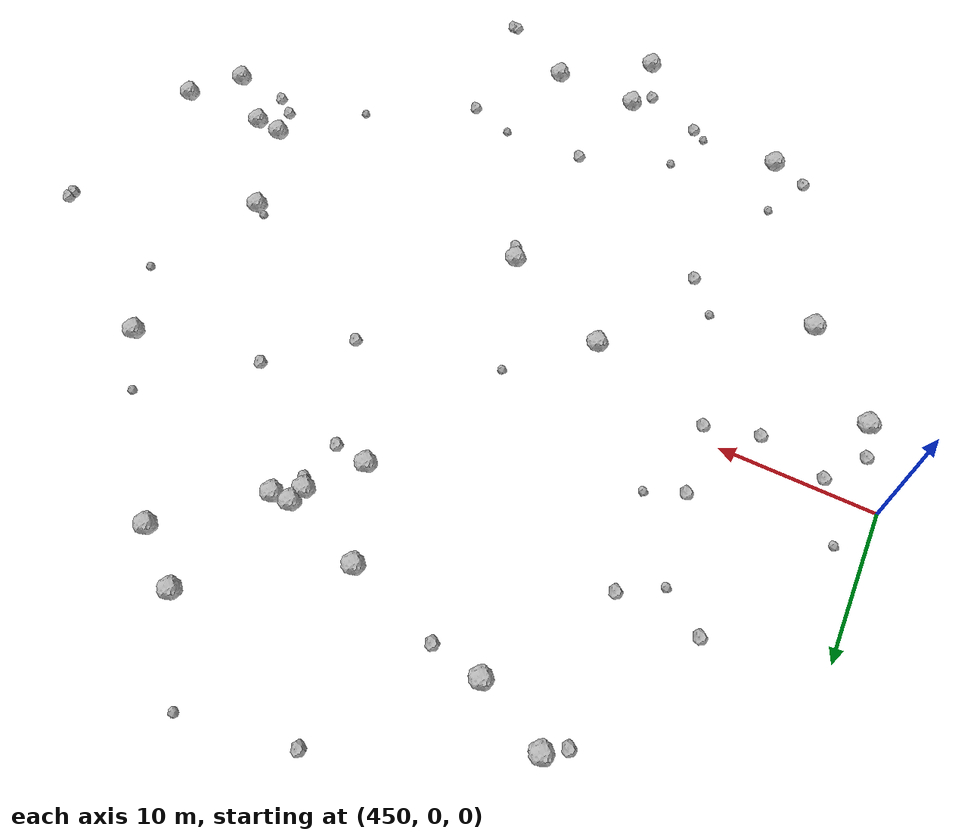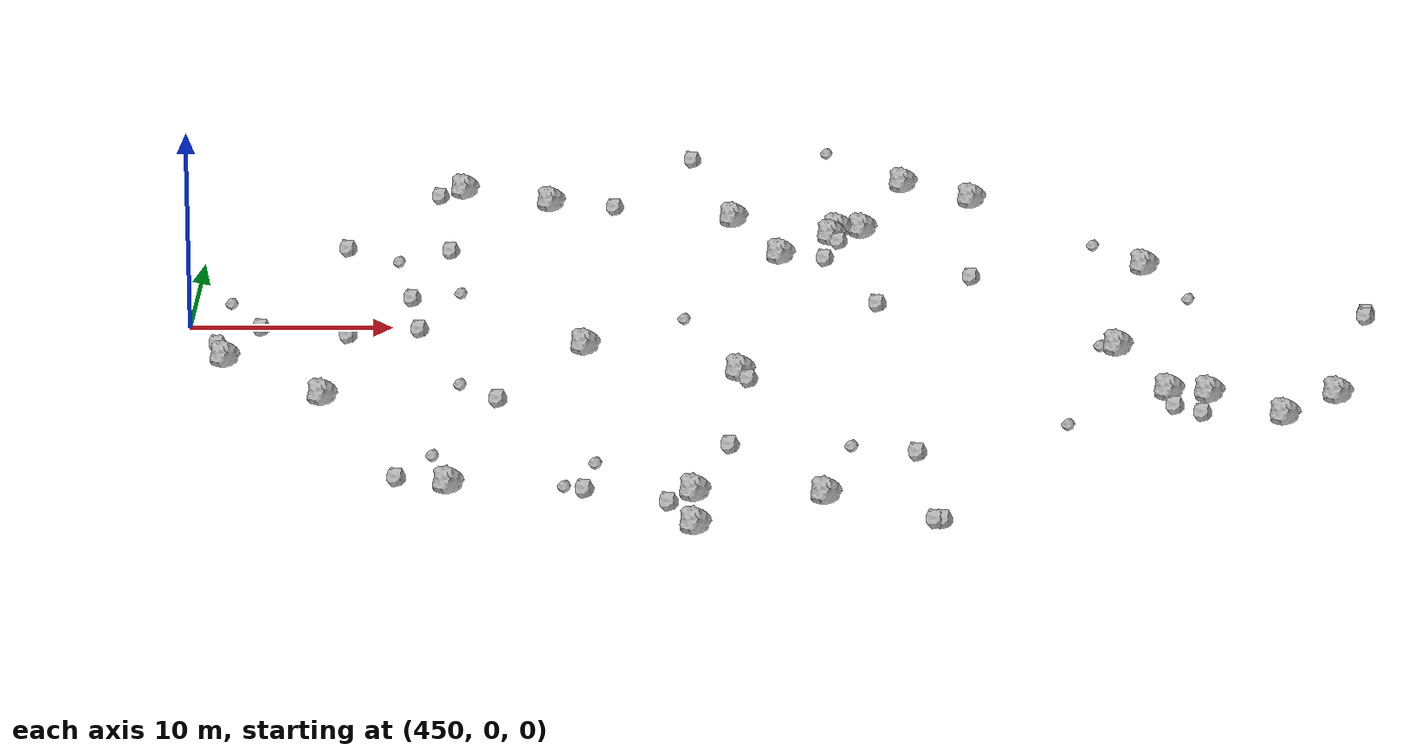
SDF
<sdf version="1.6">
 <world name="default">
  <include><uri>model://sun</uri></include>
  <model name="rock1_12_4">
   <include><uri>model://rock1</uri><pose>503.249585355101 -13.832594096502941 0.5 0 0 0</pose></include>
  </model>
  <model name="rock1_12_5">
   <include><uri>model://rock1</uri><pose>475.28103238405333 -24.634674429421295 0.5 0 0 0</pose></include>
  </model>
  <model name="rock1_12_6">
   <include><uri>model://rock1</uri><pose>463.79789161563974 -23.624499072257656 0.5 0 0 0</pose></include>
  </model>
  <model name="rock1_12_7">
   <include><uri>model://rock1</uri><pose>481.3566338211119 -24.998391225796908 0.5 0 0 0</pose></include>
  </model>
  <model name="rock1_12_8">
   <include><uri>model://rock1</uri><pose>488.96686410115 20.02758414301632 0.5 0 0 0</pose></include>
  </model>
  <model name="rock1_12_9">
   <include><uri>model://rock1</uri><pose>485.4559568385829 22.706919088020896 0.5 0 0 0</pose></include>
  </model>
  <model name="rock1_12_10">
   <include><uri>model://rock1</uri><pose>505.9642279458599 -10.712436232650347 0.5 0 0 0</pose></include>
  </model>
  <model name="rock1_12_11">
   <include><uri>model://rock1</uri><pose>452.11333938442107 -5.532749724424594 0.5 0 0 0</pose></include>
  </model>
  <model name="rock1_12_12">
   <include><uri>model://rock1</uri><pose>467.2086931568928 19.384708147430203 0.5 0 0 0</pose></include>
  </model>
  <model name="rock1_12_13">
   <include><uri>model://rock1</uri><pose>469.61356009889937 -3.6032912678239484 0.5 0 0 0</pose></include>
  </model>
  <model name="rock1_12_14">
   <include><uri>model://rock1</uri><pose>476.68162524523495 16.754481489681247 0.5 0 0 0</pose></include>
  </model>
  <model name="rock1_12_15">
   <include><uri>model://rock1</uri><pose>482.0303808567345 14.942521714614301 0.5 0 0 0</pose></include>
  </model>
  <model name="rock1_12_16">
   <include><uri>model://rock1</uri><pose>481.6980658587063 13.861975122615775 0.5 0 0 0</pose></include>
  </model>
  <model name="rock1_12_17">
   <include><uri>model://rock1</uri><pose>497.4730052525495 8.979441101435299 0.5 0 0 0</pose></include>
  </model>
  <model name="rock1_12_18">
   <include><uri>model://rock1</uri><pose>499.8015108936437 -10.594500004399848 0.5 0 0 0</pose></include>
  </model>
  <model name="rock1_12_19">
   <include><uri>model://rock1</uri><pose>475.3651957257949 -29.0694879876257 0.5 0 0 0</pose></include>
  </model>
  <model name="rock1_12_20">
   <include><uri>model://rock1</uri><pose>497.8780373033901 -10.298335827099233 0.5 0 0 0</pose></include>
  </model>
  <model name="rock1_12_21">
   <include><uri>model://rock1</uri><pose>479.11722560455866 10.721933377592961 0.5 0 0 0</pose></include>
  </model>
  <model name="rock1_12_22">
   <include><uri>model://rock1</uri><pose>495.6700939489625 -3.677650370907717 0.5 0 0 0</pose></include>
  </model>
  <model name="rock1_12_23">
   <include><uri>model://rock1</uri><pose>483.28899031343065 14.942634433956925 0.5 0 0 0</pose></include>
  </model>
  <model name="rock1_12_24">
   <include><uri>model://rock1</uri><pose>457.1944423412037 -11.14756573718643 0.5 0 0 0</pose></include>
  </model>
  <model name="rock1_12_25">
   <include><uri>model://rock1</uri><pose>477.231798645814 -7.475717035211677 0.5 0 0 0</pose></include>
  </model>
  <model name="rock1_12_26">
   <include><uri>model://rock1</uri><pose>462.659879210007 21.52545999954247 0.5 0 0 0</pose></include>
  </model>
  <model name="rock2_12_0">
   <include><uri>model://rock2</uri><pose>486.3522900477537 -28.153143033991427 0.3 0 0 0</pose></include>
  </model>
  <model name="rock2_12_1">
   <include><uri>model://rock2</uri><pose>457.1334853225143 11.854210777622086 0.3 0 0 0</pose></include>
  </model>
  <model name="rock2_12_2">
   <include><uri>model://rock2</uri><pose>461.41785837974294 20.634302542050158 0.3 0 0 0</pose></include>
  </model>
  <model name="rock2_12_3">
   <include><uri>model://rock2</uri><pose>474.38831030156973 27.019639143287094 0.3 0 0 0</pose></include>
  </model>
  <model name="rock2_12_4">
   <include><uri>model://rock2</uri><pose>482.0523481777756 13.215724985245878 0.3 0 0 0</pose></include>
  </model>
  <model name="rock2_12_5">
   <include><uri>model://rock2</uri><pose>462.3589015971786 11.488262104106369 0.3 0 0 0</pose></include>
  </model>
  <model name="rock2_12_6">
   <include><uri>model://rock2</uri><pose>453.55955485020695 -0.7427358259262284 0.3 0 0 0</pose></include>
  </model>
  <model name="rock2_12_7">
   <include><uri>model://rock2</uri><pose>488.68126833295236 7.375406241937149 0.3 0 0 0</pose></include>
  </model>
  <model name="rock2_12_8">
   <include><uri>model://rock2</uri><pose>486.69497507404213 -28.16808738684568 0.3 0 0 0</pose></include>
  </model>
  <model name="rock2_12_9">
   <include><uri>model://rock2</uri><pose>481.3467915388722 10.39173560636825 0.3 0 0 0</pose></include>
  </model>
  <model name="rock2_12_10">
   <include><uri>model://rock2</uri><pose>465.62197318507054 -11.356216740011561 0.3 0 0 0</pose></include>
  </model>
  <model name="rock2_12_11">
   <include><uri>model://rock2</uri><pose>474.07185947005144 -25.838028040900074 0.3 0 0 0</pose></include>
  </model>
  <model name="rock2_12_12">
   <include><uri>model://rock2</uri><pose>470.1290327834219 -24.09205889723244 0.3 0 0 0</pose></include>
  </model>
  <model name="rock2_12_13">
   <include><uri>model://rock2</uri><pose>477.61644341001266 -8.402578583202963 0.3 0 0 0</pose></include>
  </model>
  <model name="rock2_12_14">
   <include><uri>model://rock2</uri><pose>470.5030354628229 18.82024557994918 0.3 0 0 0</pose></include>
  </model>
  <model name="rock2_12_15">
   <include><uri>model://rock2</uri><pose>461.32343304801157 -22.56871037237796 0.3 0 0 0</pose></include>
  </model>
  <model name="rock2_12_16">
   <include><uri>model://rock2</uri><pose>457.8962732096556 -1.8396537626691654 0.3 0 0 0</pose></include>
  </model>
  <model name="rock2_12_17">
   <include><uri>model://rock2</uri><pose>451.5875013781479 -3.2693349278814026 0.3 0 0 0</pose></include>
  </model>
  <model name="rock2_12_18">
   <include><uri>model://rock2</uri><pose>508.1320067593631 1.6429252657306783 0.3 0 0 0</pose></include>
  </model>
  <model name="rock2_12_19">
   <include><uri>model://rock2</uri><pose>499.3254405889354 -13.25972055967284 0.3 0 0 0</pose></include>
  </model>
  <model name="rock2_12_20">
   <include><uri>model://rock2</uri><pose>460.7677831749808 3.859736747858463 0.3 0 0 0</pose></include>
  </model>
  <model name="rock2_12_21">
   <include><uri>model://rock2</uri><pose>461.3628435076351 -0.9426371328585148 0.3 0 0 0</pose></include>
  </model>
  <model name="rock2_12_22">
   <include><uri>model://rock2</uri><pose>498.0492985341866 -12.249567172818761 0.3 0 0 0</pose></include>
  </model>
  <model name="rock2_12_23">
   <include><uri>model://rock2</uri><pose>485.64596579089016 -18.93534027532419 0.3 0 0 0</pose></include>
  </model>
  <model name="rock2_12_24">
   <include><uri>model://rock2</uri><pose>476.81992641617404 -17.94999025931267 0.3 0 0 0</pose></include>
  </model>
  <model name="rock2_12_25">
   <include><uri>model://rock2</uri><pose>508.075127348414 1.1581810218237045 0.3 0 0 0</pose></include>
  </model>
  <model name="rock2_12_26">
   <include><uri>model://rock2</uri><pose>483.93859864570453 3.158652236691914 0.3 0 0 0</pose></include>
  </model>
  <model name="rock3_12_0">
   <include><uri>model://rock3</uri><pose>499.4355505818305 4.095301924056734 0.2 0 0 0</pose></include>
  </model>
  <model name="rock3_12_1">
   <include><uri>model://rock3</uri><pose>463.6964169847107 -9.067904687255691 0.2 0 0 0</pose></include>
  </model>
  <model name="rock3_12_2">
   <include><uri>model://rock3</uri><pose>492.8599186576329 -14.833603630174556 0.2 0 0 0</pose></include>
  </model>
  <model name="rock3_12_3">
   <include><uri>model://rock3</uri><pose>459.80146714661754 9.902122166843327 0.2 0 0 0</pose></include>
  </model>
  <model name="rock3_12_4">
   <include><uri>model://rock3</uri><pose>469.1625369034482 -23.576742252874666 0.2 0 0 0</pose></include>
  </model>
  <model name="rock3_12_5">
   <include><uri>model://rock3</uri><pose>451.81659902314976 3.1636057415890093 0.2 0 0 0</pose></include>
  </model>
  <model name="rock3_12_6">
   <include><uri>model://rock3</uri><pose>482.54068791933616 -17.915188008965302 0.2 0 0 0</pose></include>
  </model>
  <model name="rock3_12_7">
   <include><uri>model://rock3</uri><pose>474.3596851495246 0.8941342465368933 0.2 0 0 0</pose></include>
  </model>
  <model name="rock3_12_8">
   <include><uri>model://rock3</uri><pose>462.836520528672 -19.319681592544015 0.2 0 0 0</pose></include>
  </model>
  <model name="rock3_12_9">
   <include><uri>model://rock3</uri><pose>481.4397127747407 28.351241298801284 0.2 0 0 0</pose></include>
  </model>
  <model name="rock3_12_10">
   <include><uri>model://rock3</uri><pose>494.97518345479887 12.705736164054748 0.2 0 0 0</pose></include>
  </model>
  <model name="rock3_12_11">
   <include><uri>model://rock3</uri><pose>494.7904732196092 -3.176151627720081 0.2 0 0 0</pose></include>
  </model>
  <model name="rock3_12_12">
   <include><uri>model://rock3</uri><pose>463.13755417046866 4.853281334773044 0.2 0 0 0</pose></include>
  </model>
  <model name="rock3_12_13">
   <include><uri>model://rock3</uri><pose>470.5301666561107 -20.33859980761728 0.2 0 0 0</pose></include>
  </model>
 </world>
</sdf>
